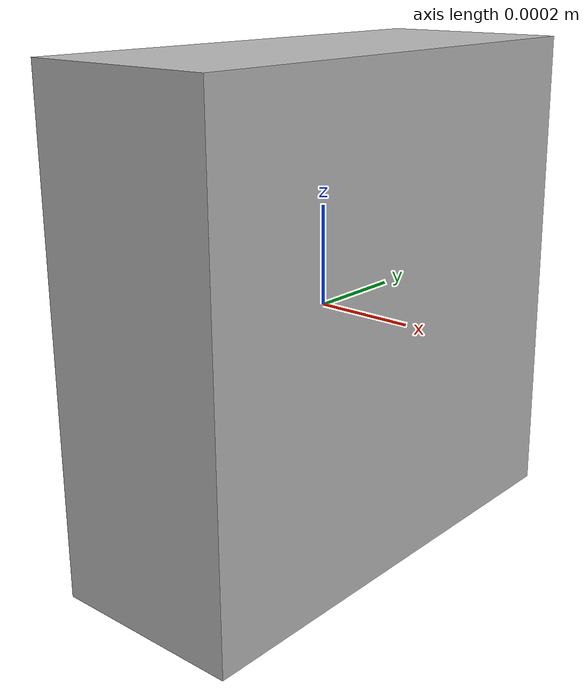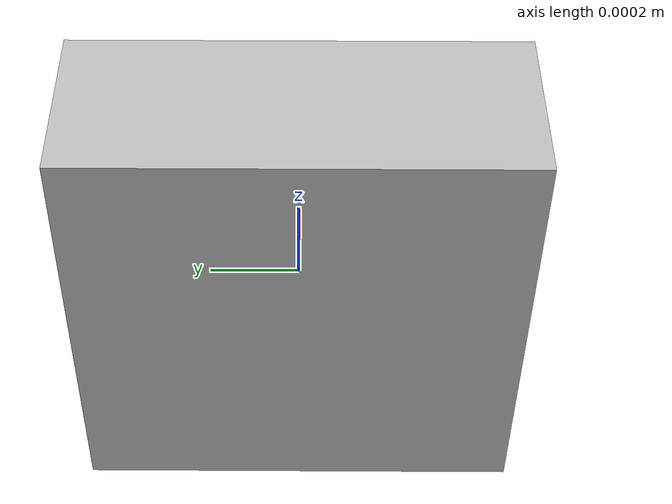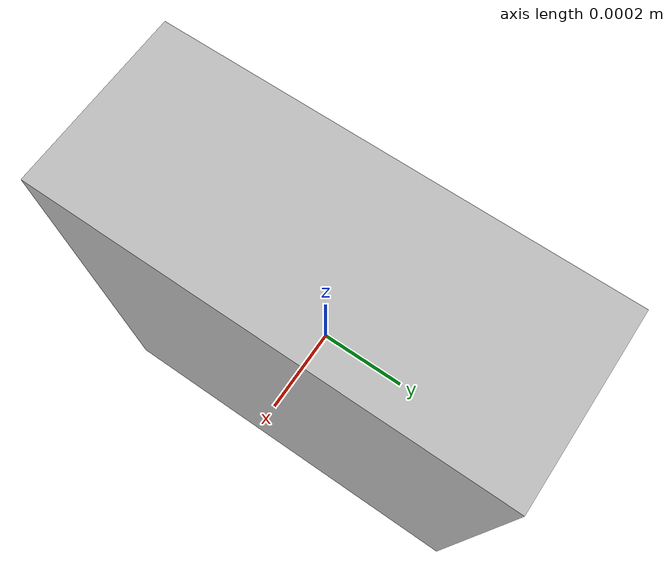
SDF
<?xml version="1.0" ?>

<sdf version="1.5">
  <model name="rplidar">
    <link name="laser_link">

      <inertial>
        <pose>0 0 0 0 0 0</pose>
        <mass>0.002</mass>
        <inertia>
          <ixx>4.15e-6</ixx>
          <ixy>0</ixy>
          <ixz>0</ixz>
          <iyy>2.407e-6</iyy>
          <iyz>0</iyz>
          <izz>2.407e-6</izz>
        </inertia>
      </inertial>

      <visual name="visual">
        <geometry>
          <box>
            <size>0.0004 0.001 0.001</size>
          </box>
        </geometry>
      </visual>

      <sensor name="laser" type="ray">
        <ray>
          <scan>
            <horizontal>
              <samples>360</samples>
              <resolution>1</resolution>
              <min_angle>-3.14</min_angle>
              <max_angle>3.14</max_angle>
            </horizontal>
          </scan>
          <range>
            <min>0.2</min>
            <max>100.0</max>
            <resolution>0.05</resolution>
          </range>
          <noise>
            <type>gaussian</type>
            <mean>0.0</mean>
            <stddev>0.01</stddev>
          </noise>
        </ray>
        <plugin name="lidar" filename="libgazebo_ros_ray_sensor.so">
          <ros>
          <remapping>~/out:=scan</remapping>
          <namespace>/lidar</namespace>
          </ros>
          <output_type>sensor_msgs/LaserScan</output_type>
        </plugin>
        <always_on>1</always_on>
        <update_rate>5.5</update_rate>
        <visualize>true</visualize>
      </sensor>
    </link>
  </model>
</sdf>

<!-- vim: set et fenc= ff=unix sts=0 sw=2 ts=2 : -->
